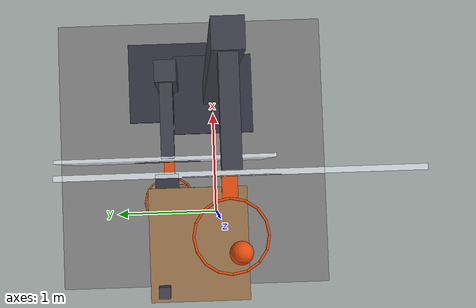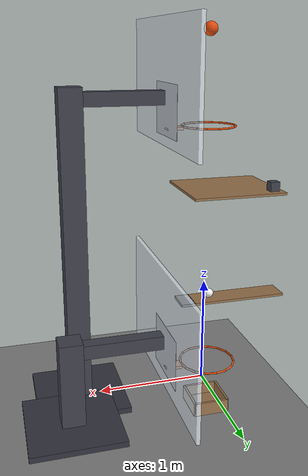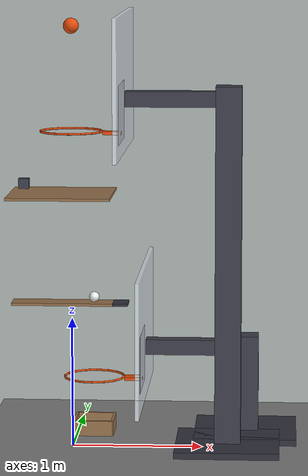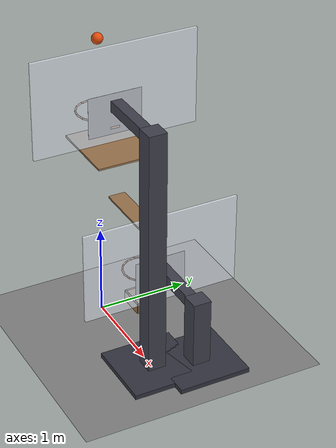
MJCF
<mujoco model="two_trapdoor_relay">
  <compiler angle="radian"/>
  <option timestep="0.002"/>
  <worldbody>
    <geom name="floor" type="plane" size="6 6 0.1" friction="0.8 0.005 0.002"/>
    <body name="hoop1">
      <geom name="hoop1_rim_00" type="capsule" size="0.008" fromto="0.2366 0 2.45 0.21859 0.0905429 2.45" rgba="0.9 0.3 0.05 1"/>
      <geom name="hoop1_rim_01" type="capsule" size="0.008" fromto="0.21859 0.0905429 2.45 0.167301 0.167301 2.45" rgba="0.9 0.3 0.05 1"/>
      <geom name="hoop1_rim_02" type="capsule" size="0.008" fromto="0.167301 0.167301 2.45 0.0905429 0.21859 2.45" rgba="0.9 0.3 0.05 1"/>
      <geom name="hoop1_rim_03" type="capsule" size="0.008" fromto="0.0905429 0.21859 2.45 1.44876e-17 0.2366 2.45" rgba="0.9 0.3 0.05 1"/>
      <geom name="hoop1_rim_04" type="capsule" size="0.008" fromto="1.44876e-17 0.2366 2.45 -0.0905429 0.21859 2.45" rgba="0.9 0.3 0.05 1"/>
      <geom name="hoop1_rim_05" type="capsule" size="0.008" fromto="-0.0905429 0.21859 2.45 -0.167301 0.167301 2.45" rgba="0.9 0.3 0.05 1"/>
      <geom name="hoop1_rim_06" type="capsule" size="0.008" fromto="-0.167301 0.167301 2.45 -0.21859 0.0905429 2.45" rgba="0.9 0.3 0.05 1"/>
      <geom name="hoop1_rim_07" type="capsule" size="0.008" fromto="-0.21859 0.0905429 2.45 -0.2366 2.89751e-17 2.45" rgba="0.9 0.3 0.05 1"/>
      <geom name="hoop1_rim_08" type="capsule" size="0.008" fromto="-0.2366 2.89751e-17 2.45 -0.21859 -0.0905429 2.45" rgba="0.9 0.3 0.05 1"/>
      <geom name="hoop1_rim_09" type="capsule" size="0.008" fromto="-0.21859 -0.0905429 2.45 -0.167301 -0.167301 2.45" rgba="0.9 0.3 0.05 1"/>
      <geom name="hoop1_rim_10" type="capsule" size="0.008" fromto="-0.167301 -0.167301 2.45 -0.0905429 -0.21859 2.45" rgba="0.9 0.3 0.05 1"/>
      <geom name="hoop1_rim_11" type="capsule" size="0.008" fromto="-0.0905429 -0.21859 2.45 -4.34627e-17 -0.2366 2.45" rgba="0.9 0.3 0.05 1"/>
      <geom name="hoop1_rim_12" type="capsule" size="0.008" fromto="-4.34627e-17 -0.2366 2.45 0.0905429 -0.21859 2.45" rgba="0.9 0.3 0.05 1"/>
      <geom name="hoop1_rim_13" type="capsule" size="0.008" fromto="0.0905429 -0.21859 2.45 0.167301 -0.167301 2.45" rgba="0.9 0.3 0.05 1"/>
      <geom name="hoop1_rim_14" type="capsule" size="0.008" fromto="0.167301 -0.167301 2.45 0.21859 -0.0905429 2.45" rgba="0.9 0.3 0.05 1"/>
      <geom name="hoop1_rim_15" type="capsule" size="0.008" fromto="0.21859 -0.0905429 2.45 0.2366 -5.79503e-17 2.45" rgba="0.9 0.3 0.05 1"/>
      <geom name="hoop1_bracket" type="box" pos="0.3105 0 2.44" size="0.0705 0.05 0.012" rgba="0.9 0.3 0.05 1"/>
      <geom name="hoop1_backboard" type="box" pos="0.396 0 2.825" size="0.015 0.9 0.525" rgba="0.92 0.95 0.98 0.85"/>
      <geom name="hoop1_square" type="box" pos="0.3805 0 2.595" size="0.0005 0.295 0.225" contype="0" conaffinity="0" rgba="0.1 0.1 0.1 1"/>
      <geom name="hoop1_pole_base" type="box" pos="1.2 0 0.025" size="0.4 0.4 0.025" rgba="0.2 0.2 0.25 1"/>
      <geom name="hoop1_pole" type="box" pos="1.2 0 1.4" size="0.1 0.1 1.4" rgba="0.25 0.25 0.3 1"/>
      <geom name="hoop1_arm" type="box" pos="0.7555 0 2.7" size="0.3445 0.06 0.06" rgba="0.25 0.25 0.3 1"/>
    </body>
    <body name="ball1" pos="0 0 3.25">
      <freejoint/>
      <geom name="ball1" type="sphere" pos="0 0 0" size="0.06" mass="1" condim="6" friction="0.8 0.01 0.004" solref="0.01 1" rgba="0.9 0.3 0.05 1"/>
    </body>
    <body name="flap1" pos="0.3 0.2 1.94">
      <joint name="flap1_hinge" type="hinge" pos="0 0 0" axis="0 1 0" limited="true" range="-0.785398 0" stiffness="0.4" springref="5.75959" damping="0.02"/>
      <geom name="flap1" type="box" pos="-0.4 0 0" size="0.4 0.35 0.01" mass="0.15" friction="0.5 0.005 0.0001" rgba="0.6 0.45 0.3 1"/>
    </body>
    <body name="block" pos="-0.42 0.45 1.99">
      <freejoint/>
      <geom name="block" type="box" pos="0 0 0" size="0.04 0.04 0.04" mass="0.2" friction="0.6 0.005 0.0001" solref="0.01 1" rgba="0.25 0.25 0.3 1"/>
    </body>
    <body name="hoop2">
      <geom name="hoop2_rim_00" type="capsule" size="0.008" fromto="0.3666 0.45 0.45 0.34859 0.540543 0.45" rgba="0.9 0.3 0.05 1"/>
      <geom name="hoop2_rim_01" type="capsule" size="0.008" fromto="0.34859 0.540543 0.45 0.297301 0.617301 0.45" rgba="0.9 0.3 0.05 1"/>
      <geom name="hoop2_rim_02" type="capsule" size="0.008" fromto="0.297301 0.617301 0.45 0.220543 0.66859 0.45" rgba="0.9 0.3 0.05 1"/>
      <geom name="hoop2_rim_03" type="capsule" size="0.008" fromto="0.220543 0.66859 0.45 0.13 0.6866 0.45" rgba="0.9 0.3 0.05 1"/>
      <geom name="hoop2_rim_04" type="capsule" size="0.008" fromto="0.13 0.6866 0.45 0.0394571 0.66859 0.45" rgba="0.9 0.3 0.05 1"/>
      <geom name="hoop2_rim_05" type="capsule" size="0.008" fromto="0.0394571 0.66859 0.45 -0.0373015 0.617301 0.45" rgba="0.9 0.3 0.05 1"/>
      <geom name="hoop2_rim_06" type="capsule" size="0.008" fromto="-0.0373015 0.617301 0.45 -0.0885899 0.540543 0.45" rgba="0.9 0.3 0.05 1"/>
      <geom name="hoop2_rim_07" type="capsule" size="0.008" fromto="-0.0885899 0.540543 0.45 -0.1066 0.45 0.45" rgba="0.9 0.3 0.05 1"/>
      <geom name="hoop2_rim_08" type="capsule" size="0.008" fromto="-0.1066 0.45 0.45 -0.0885899 0.359457 0.45" rgba="0.9 0.3 0.05 1"/>
      <geom name="hoop2_rim_09" type="capsule" size="0.008" fromto="-0.0885899 0.359457 0.45 -0.0373015 0.282699 0.45" rgba="0.9 0.3 0.05 1"/>
      <geom name="hoop2_rim_10" type="capsule" size="0.008" fromto="-0.0373015 0.282699 0.45 0.0394571 0.23141 0.45" rgba="0.9 0.3 0.05 1"/>
      <geom name="hoop2_rim_11" type="capsule" size="0.008" fromto="0.0394571 0.23141 0.45 0.13 0.2134 0.45" rgba="0.9 0.3 0.05 1"/>
      <geom name="hoop2_rim_12" type="capsule" size="0.008" fromto="0.13 0.2134 0.45 0.220543 0.23141 0.45" rgba="0.9 0.3 0.05 1"/>
      <geom name="hoop2_rim_13" type="capsule" size="0.008" fromto="0.220543 0.23141 0.45 0.297301 0.282699 0.45" rgba="0.9 0.3 0.05 1"/>
      <geom name="hoop2_rim_14" type="capsule" size="0.008" fromto="0.297301 0.282699 0.45 0.34859 0.359457 0.45" rgba="0.9 0.3 0.05 1"/>
      <geom name="hoop2_rim_15" type="capsule" size="0.008" fromto="0.34859 0.359457 0.45 0.3666 0.45 0.45" rgba="0.9 0.3 0.05 1"/>
      <geom name="hoop2_bracket" type="box" pos="0.4405 0.45 0.44" size="0.0705 0.05 0.012" rgba="0.9 0.3 0.05 1"/>
      <geom name="hoop2_backboard" type="box" pos="0.526 0.45 0.825" size="0.015 0.9 0.525" rgba="0.92 0.95 0.98 0.85"/>
      <geom name="hoop2_square" type="box" pos="0.5105 0.45 0.595" size="0.0005 0.295 0.225" contype="0" conaffinity="0" rgba="0.1 0.1 0.1 1"/>
      <geom name="hoop2_pole_base" type="box" pos="1.33 0.45 0.025" size="0.4 0.4 0.025" rgba="0.2 0.2 0.25 1"/>
      <geom name="hoop2_pole" type="box" pos="1.33 0.45 0.4" size="0.1 0.1 0.4" rgba="0.25 0.25 0.3 1"/>
      <geom name="hoop2_arm" type="box" pos="0.8855 0.45 0.7" size="0.3445 0.06 0.06" rgba="0.25 0.25 0.3 1"/>
    </body>
    <body name="flap2" pos="0.28 0.45 1.04">
      <joint name="flap2_hinge" type="hinge" pos="0 0 0" axis="0 1 0" limited="true" range="-0.785398 0" damping="0.005"/>
      <geom name="flap2" type="box" pos="-0.4 0 0" size="0.4 0.1 0.01" mass="0.06" friction="0.6 0.005 0.0001" solref="0.01 1" rgba="0.6 0.45 0.3 1"/>
      <geom name="flap2 weight" type="box" pos="0.06 0 0" size="0.06 0.1 0.01" mass="0.645" rgba="0.2 0.2 0.25 1"/>
    </body>
    <body name="ball2" pos="0.13 0.45 1.09">
      <freejoint/>
      <geom name="ball2" type="sphere" pos="0 0 0" size="0.04" mass="0.05" condim="6" friction="0.8 0.01 0.01" solref="0.01 1" rgba="0.95 0.95 0.95 1"/>
    </body>
    <body name="cup">
      <geom name="cup_base" type="box" pos="0.13 0.45 0.01" size="0.15 0.15 0.01" friction="0.8 0.01 0.01" solref="0.01 1" rgba="0.6 0.45 0.3 1"/>
      <geom name="cup_near_wall" type="box" pos="-0.02 0.45 0.06" size="0.01 0.15 0.06" friction="0.8 0.01 0.01" solref="0.01 1" rgba="0.6 0.45 0.3 1"/>
      <geom name="cup_far_wall" type="box" pos="0.28 0.45 0.06" size="0.01 0.15 0.06" friction="0.8 0.01 0.01" solref="0.01 1" rgba="0.6 0.45 0.3 1"/>
      <geom name="cup_left_wall" type="box" pos="0.13 0.6 0.06" size="0.15 0.01 0.06" friction="0.8 0.01 0.01" solref="0.01 1" rgba="0.6 0.45 0.3 1"/>
      <geom name="cup_right_wall" type="box" pos="0.13 0.3 0.06" size="0.15 0.01 0.06" friction="0.8 0.01 0.01" solref="0.01 1" rgba="0.6 0.45 0.3 1"/>
    </body>
  </worldbody>
  <keyframe>
    <key name="start" qpos="0 0 3.25 1 0 0 0 0 -0.42 0.45 1.99 1 0 0 0 0 0.13 0.45 1.09 1 0 0 0" qvel="0 0 0 0 0 0 0 0 0 0 0 0 0 0 0 0 0 0 0 0"/>
  </keyframe>
</mujoco>
